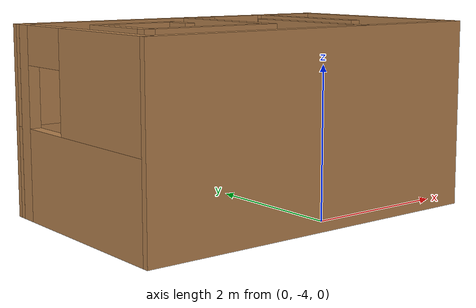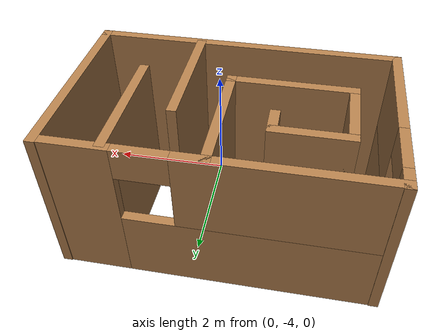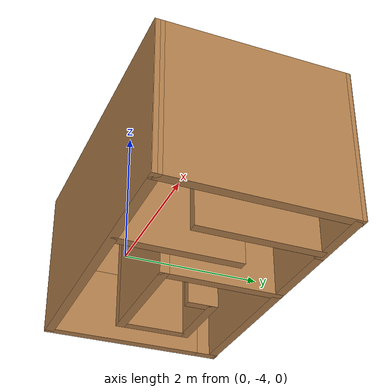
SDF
<?xml version='1.0'?>
<sdf version='1.6'>
  <model name='Testing_Course1'>
    <pose frame=''>-0.4 -2.88987 0 0 -0 0</pose>
    <link name='Wall_10'>
      <collision name='Wall_10_Collision'>
        <geometry>
          <box>
            <size>2 0.15 2.5</size>
          </box>
        </geometry>
        <pose frame=''>0 0 1.25 0 -0 0</pose>
      </collision>
      <visual name='Wall_10_Visual'>
        <pose frame=''>0 0 1.25 0 -0 0</pose>
        <geometry>
          <box>
            <size>2 0.15 2.5</size>
          </box>
        </geometry>
        <material>
          <script>
            <uri>file://media/materials/scripts/gazebo.material</uri>
            <name>Gazebo/Wood</name>
          </script>
          <ambient>1 1 1 1</ambient>
        </material>
        <meta>
          <layer>0</layer>
        </meta>
      </visual>
      <pose frame=''>1.49 0.444869 0 0 0 -1.5708</pose>
    </link>
    <link name='Wall_12'>
      <collision name='Wall_12_Collision'>
        <geometry>
          <box>
            <size>2 0.15 2.5</size>
          </box>
        </geometry>
        <pose frame=''>0 0 1.25 0 -0 0</pose>
      </collision>
      <visual name='Wall_12_Visual'>
        <pose frame=''>0 0 1.25 0 -0 0</pose>
        <geometry>
          <box>
            <size>2 0.15 2.5</size>
          </box>
        </geometry>
        <material>
          <script>
            <uri>file://media/materials/scripts/gazebo.material</uri>
            <name>Gazebo/Wood</name>
          </script>
          <ambient>1 1 1 1</ambient>
        </material>
        <meta>
          <layer>0</layer>
        </meta>
      </visual>
      <pose frame=''>0.77 -0.465131 0 0 -0 1.5708</pose>
    </link>
    <link name='Wall_14'>
      <collision name='Wall_14_Collision'>
        <geometry>
          <box>
            <size>2 0.15 2.5</size>
          </box>
        </geometry>
        <pose frame=''>0 0 1.25 0 -0 0</pose>
      </collision>
      <visual name='Wall_14_Visual'>
        <pose frame=''>0 0 1.25 0 -0 0</pose>
        <geometry>
          <box>
            <size>2 0.15 2.5</size>
          </box>
        </geometry>
        <material>
          <script>
            <uri>file://media/materials/scripts/gazebo.material</uri>
            <name>Gazebo/Wood</name>
          </script>
          <ambient>1 1 1 1</ambient>
        </material>
        <meta>
          <layer>0</layer>
        </meta>
      </visual>
      <pose frame=''>0.08 0.494869 0 0 0 -1.5708</pose>
    </link>
    <link name='Wall_15'>
      <collision name='Wall_15_Collision'>
        <geometry>
          <box>
            <size>2 0.15 2.5</size>
          </box>
        </geometry>
        <pose frame=''>0 0 1.25 0 -0 0</pose>
      </collision>
      <visual name='Wall_15_Visual'>
        <pose frame=''>0 0 1.25 0 -0 0</pose>
        <geometry>
          <box>
            <size>2 0.15 2.5</size>
          </box>
        </geometry>
        <material>
          <script>
            <uri>file://media/materials/scripts/gazebo.material</uri>
            <name>Gazebo/Wood</name>
          </script>
          <ambient>1 1 1 1</ambient>
        </material>
        <meta>
          <layer>0</layer>
        </meta>
      </visual>
      <pose frame=''>-0.845 -0.430131 0 0 -0 3.14159</pose>
    </link>
    <link name='Wall_16'>
      <collision name='Wall_16_Collision'>
        <geometry>
          <box>
            <size>1.25 0.15 2.5</size>
          </box>
        </geometry>
        <pose frame=''>0 0 1.25 0 -0 0</pose>
      </collision>
      <visual name='Wall_16_Visual'>
        <pose frame=''>0 0 1.25 0 -0 0</pose>
        <geometry>
          <box>
            <size>1.25 0.15 2.5</size>
          </box>
        </geometry>
        <material>
          <script>
            <uri>file://media/materials/scripts/gazebo.material</uri>
            <name>Gazebo/Wood</name>
          </script>
          <ambient>1 1 1 1</ambient>
        </material>
        <meta>
          <layer>0</layer>
        </meta>
      </visual>
      <pose frame=''>-1.77 0.119869 0 0 -0 1.5708</pose>
    </link>
    <link name='Wall_17'>
      <collision name='Wall_17_Collision'>
        <geometry>
          <box>
            <size>1.25 0.15 2.5</size>
          </box>
        </geometry>
        <pose frame=''>0 0 1.25 0 -0 0</pose>
      </collision>
      <visual name='Wall_17_Visual'>
        <pose frame=''>0 0 1.25 0 -0 0</pose>
        <geometry>
          <box>
            <size>1.25 0.15 2.5</size>
          </box>
        </geometry>
        <material>
          <script>
            <uri>file://media/materials/scripts/gazebo.material</uri>
            <name>Gazebo/Wood</name>
          </script>
          <ambient>1 1 1 1</ambient>
        </material>
        <meta>
          <layer>0</layer>
        </meta>
      </visual>
      <pose frame=''>-1.22 0.669869 0 0 -0 0</pose>
    </link>
    <link name='Wall_18'>
      <collision name='Wall_18_Collision'>
        <geometry>
          <box>
            <size>0.5 0.15 2.5</size>
          </box>
        </geometry>
        <pose frame=''>0 0 1.25 0 -0 0</pose>
      </collision>
      <visual name='Wall_18_Visual'>
        <pose frame=''>0 0 1.25 0 -0 0</pose>
        <geometry>
          <box>
            <size>0.5 0.15 2.5</size>
          </box>
        </geometry>
        <material>
          <script>
            <uri>file://media/materials/scripts/gazebo.material</uri>
            <name>Gazebo/Wood</name>
          </script>
          <ambient>1 1 1 1</ambient>
        </material>
        <meta>
          <layer>0</layer>
        </meta>
      </visual>
      <pose frame=''>-0.67 0.494869 0 0 0 -1.5708</pose>
    </link>
    <link name='Wall_5'>
      <collision name='Wall_5_Collision'>
        <geometry>
          <box>
            <size>5 0.15 2.5</size>
          </box>
        </geometry>
        <pose frame=''>0 0 1.25 0 -0 0</pose>
      </collision>
      <visual name='Wall_5_Visual'>
        <pose frame=''>0 0 1.25 0 -0 0</pose>
        <geometry>
          <box>
            <size>5 0.15 2.5</size>
          </box>
        </geometry>
        <material>
          <script>
            <uri>file://media/materials/scripts/gazebo.material</uri>
            <name>Gazebo/Wood</name>
          </script>
          <ambient>1 1 1 1</ambient>
        </material>
        <meta>
          <layer>0</layer>
        </meta>
      </visual>
      <pose frame=''>0.005 -1.44013 0 0 -0 0</pose>
    </link>
    <link name='Wall_6'>
      <collision name='Wall_6_Collision'>
        <geometry>
          <box>
            <size>3.02002 0.15 2.5</size>
          </box>
        </geometry>
        <pose frame=''>0 0 1.25 0 -0 0</pose>
      </collision>
      <visual name='Wall_6_Visual'>
        <pose frame=''>0 0 1.25 0 -0 0</pose>
        <geometry>
          <box>
            <size>3.02002 0.15 2.5</size>
          </box>
        </geometry>
        <material>
          <script>
            <uri>file://media/materials/scripts/gazebo.material</uri>
            <name>Gazebo/Wood</name>
          </script>
          <ambient>1 1 1 1</ambient>
        </material>
        <meta>
          <layer>0</layer>
        </meta>
      </visual>
      <pose frame=''>2.425 0.004869 0 0 -0 1.57428</pose>
    </link>
    <link name='Wall_7'>
      <pose frame=''>-0.005 1.42987 0 0 -0 3.14159</pose>
      <visual name='Wall_7_Visual_0'>
        <pose frame=''>-1.9275 0 1.25 0 -0 0</pose>
        <geometry>
          <box>
            <size>1.145 0.15 2.5</size>
          </box>
        </geometry>
        <material>
          <script>
            <uri>file://media/materials/scripts/gazebo.material</uri>
            <name>Gazebo/Wood</name>
          </script>
          <ambient>1 1 1 1</ambient>
        </material>
        <meta>
          <layer>0</layer>
        </meta>
      </visual>
      <collision name='Wall_7_Collision_0'>
        <geometry>
          <box>
            <size>1.145 0.15 2.5</size>
          </box>
        </geometry>
        <pose frame=''>-1.9275 0 1.25 0 -0 0</pose>
      </collision>
      <visual name='Wall_7_Visual_1'>
        <pose frame=''>0.5725 0 0.6 0 -0 0</pose>
        <geometry>
          <box>
            <size>3.855 0.15 1.2</size>
          </box>
        </geometry>
        <material>
          <script>
            <uri>file://media/materials/scripts/gazebo.material</uri>
            <name>Gazebo/Wood</name>
          </script>
          <ambient>1 1 1 1</ambient>
        </material>
        <meta>
          <layer>0</layer>
        </meta>
      </visual>
      <collision name='Wall_7_Collision_1'>
        <geometry>
          <box>
            <size>3.855 0.15 1.2</size>
          </box>
        </geometry>
        <pose frame=''>0.5725 0 0.6 0 -0 0</pose>
      </collision>
      <visual name='Wall_7_Visual_2'>
        <pose frame=''>0.9725 0 1.85 0 -0 0</pose>
        <geometry>
          <box>
            <size>3.055 0.15 1.3</size>
          </box>
        </geometry>
        <material>
          <script>
            <uri>file://media/materials/scripts/gazebo.material</uri>
            <name>Gazebo/Wood</name>
          </script>
          <ambient>1 1 1 1</ambient>
        </material>
        <meta>
          <layer>0</layer>
        </meta>
      </visual>
      <collision name='Wall_7_Collision_2'>
        <geometry>
          <box>
            <size>3.055 0.15 1.3</size>
          </box>
        </geometry>
        <pose frame=''>0.9725 0 1.85 0 -0 0</pose>
      </collision>
      <visual name='Wall_7_Visual_3'>
        <pose frame=''>-0.955 0 2.25 0 -0 0</pose>
        <geometry>
          <box>
            <size>0.8 0.15 0.5</size>
          </box>
        </geometry>
        <material>
          <script>
            <uri>file://media/materials/scripts/gazebo.material</uri>
            <name>Gazebo/Wood</name>
          </script>
          <ambient>1 1 1 1</ambient>
        </material>
        <meta>
          <layer>0</layer>
        </meta>
      </visual>
      <collision name='Wall_7_Collision_3'>
        <geometry>
          <box>
            <size>0.8 0.15 0.5</size>
          </box>
        </geometry>
        <pose frame=''>-0.955 0 2.25 0 -0 0</pose>
      </collision>
    </link>
    <link name='Wall_8'>
      <pose frame=''>-2.425 0.004869 0 0 0 -1.56731</pose>
      <visual name='Wall_8_Visual_0'>
        <pose frame=''>-1.32005 0 1.25 0 -0 0</pose>
        <geometry>
          <box>
            <size>0.379917 0.15 2.5</size>
          </box>
        </geometry>
        <material>
          <script>
            <uri>file://media/materials/scripts/gazebo.material</uri>
            <name>Gazebo/Wood</name>
          </script>
          <ambient>1 1 1 1</ambient>
        </material>
        <meta>
          <layer>0</layer>
        </meta>
      </visual>
      <collision name='Wall_8_Collision_0'>
        <geometry>
          <box>
            <size>0.379917 0.15 2.5</size>
          </box>
        </geometry>
        <pose frame=''>-1.32005 0 1.25 0 -0 0</pose>
      </collision>
      <visual name='Wall_8_Visual_1'>
        <pose frame=''>0.189958 0 0.6 0 -0 0</pose>
        <geometry>
          <box>
            <size>2.6401 0.15 1.2</size>
          </box>
        </geometry>
        <material>
          <script>
            <uri>file://media/materials/scripts/gazebo.material</uri>
            <name>Gazebo/Wood</name>
          </script>
          <ambient>1 1 1 1</ambient>
        </material>
        <meta>
          <layer>0</layer>
        </meta>
      </visual>
      <collision name='Wall_8_Collision_1'>
        <geometry>
          <box>
            <size>2.6401 0.15 1.2</size>
          </box>
        </geometry>
        <pose frame=''>0.189958 0 0.6 0 -0 0</pose>
      </collision>
      <visual name='Wall_8_Visual_2'>
        <pose frame=''>0.589958 0 1.85 0 -0 0</pose>
        <geometry>
          <box>
            <size>1.8401 0.15 1.3</size>
          </box>
        </geometry>
        <material>
          <script>
            <uri>file://media/materials/scripts/gazebo.material</uri>
            <name>Gazebo/Wood</name>
          </script>
          <ambient>1 1 1 1</ambient>
        </material>
        <meta>
          <layer>0</layer>
        </meta>
      </visual>
      <collision name='Wall_8_Collision_2'>
        <geometry>
          <box>
            <size>1.8401 0.15 1.3</size>
          </box>
        </geometry>
        <pose frame=''>0.589958 0 1.85 0 -0 0</pose>
      </collision>
      <visual name='Wall_8_Visual_3'>
        <pose frame=''>-0.730092 0 2.25 0 -0 0</pose>
        <geometry>
          <box>
            <size>0.8 0.15 0.5</size>
          </box>
        </geometry>
        <material>
          <script>
            <uri>file://media/materials/scripts/gazebo.material</uri>
            <name>Gazebo/Wood</name>
          </script>
          <ambient>1 1 1 1</ambient>
        </material>
        <meta>
          <layer>0</layer>
        </meta>
      </visual>
      <collision name='Wall_8_Collision_3'>
        <geometry>
          <box>
            <size>0.8 0.15 0.5</size>
          </box>
        </geometry>
        <pose frame=''>-0.730092 0 2.25 0 -0 0</pose>
      </collision>
    </link>
    <static>1</static>
  </model>
</sdf>
